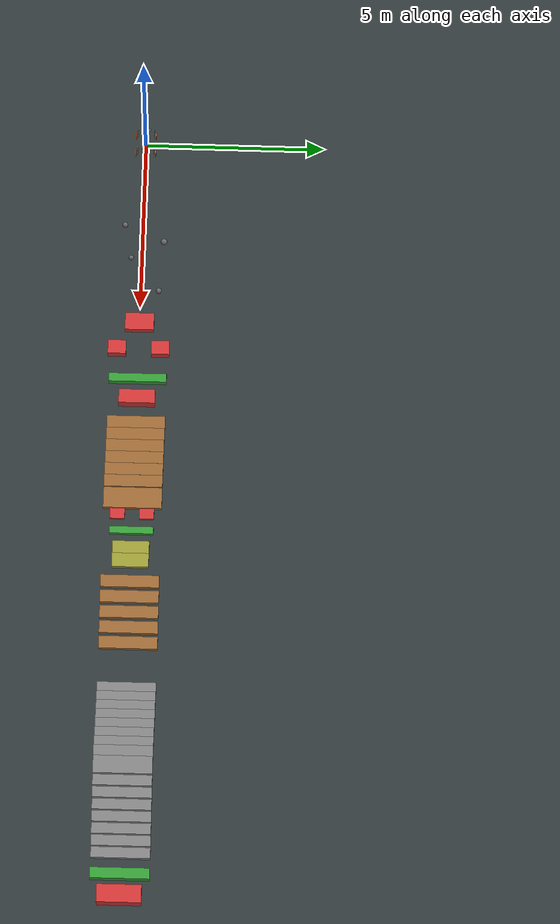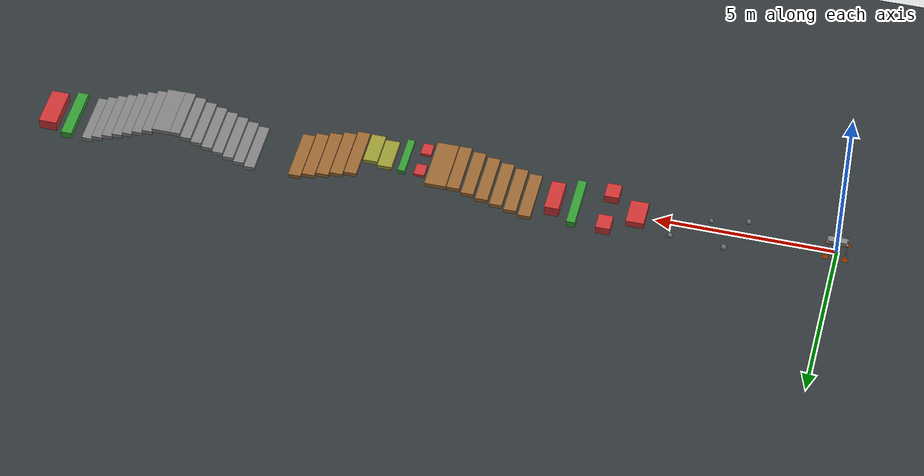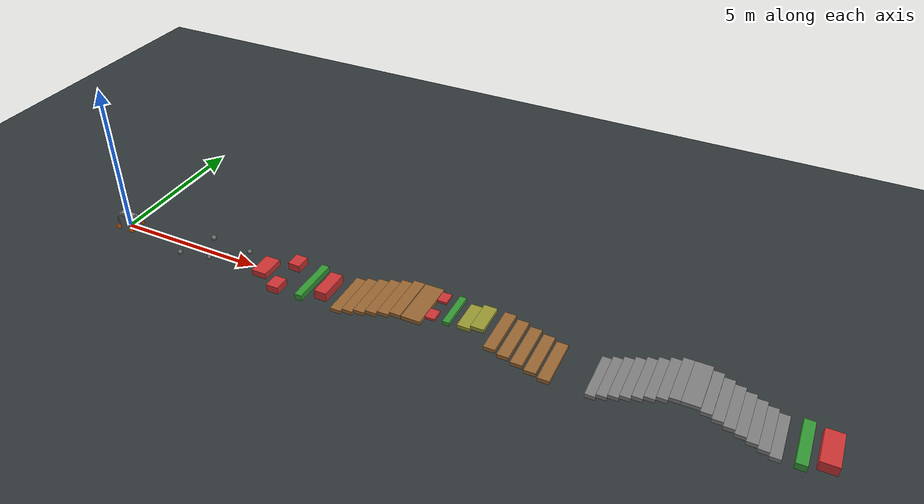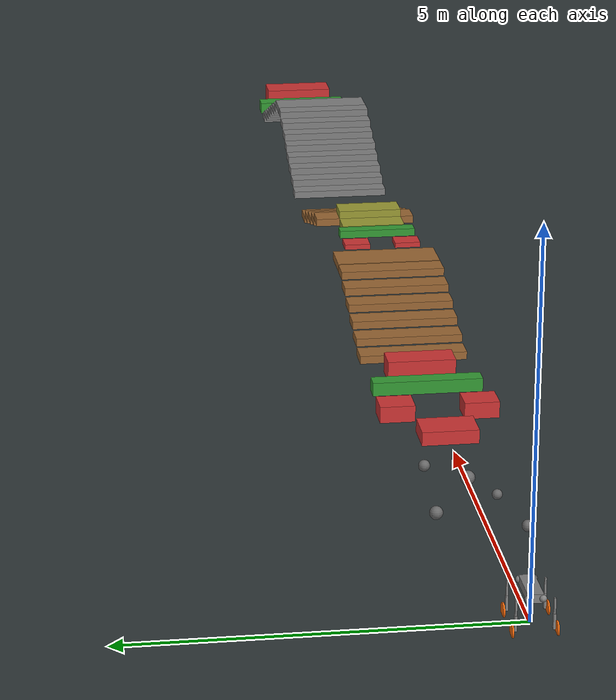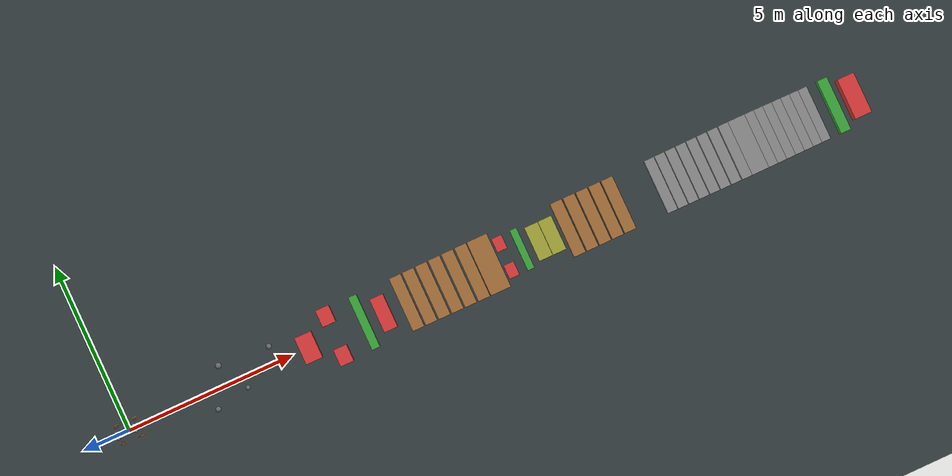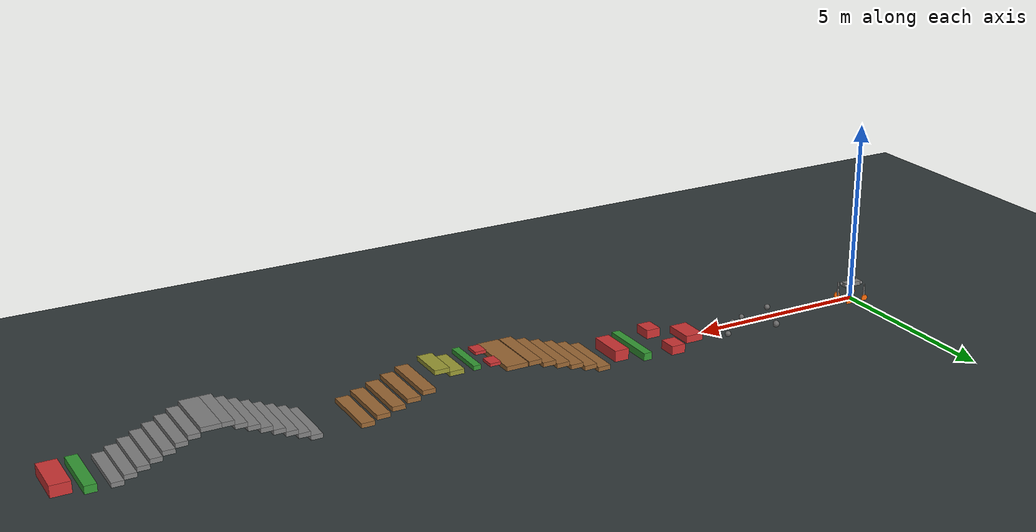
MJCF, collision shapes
<mujoco model="titatit_combined">
  <include file="../wheeled_titatit_rl.xml"/>

  <statistic center="10 0 0.8" extent="14"/>

  <visual>
    <headlight diffuse="0.6 0.6 0.6" ambient="0.35 0.35 0.35" specular="0 0 0"/>
    <rgba haze="0.15 0.25 0.35 1"/>
    <global azimuth="-120" elevation="-20"/>
  </visual>

  <asset>
    <texture type="skybox" builtin="gradient" rgb1="0.35 0.5 0.7" rgb2="0.02 0.03 0.04" width="512" height="3072"/>
    <texture type="2d" name="groundplane" builtin="checker" mark="edge" rgb1="0.25 0.28 0.28" rgb2="0.12 0.15 0.16" markrgb="0.8 0.8 0.8" width="300" height="300"/>
    <material name="groundplane" texture="groundplane" texuniform="true" texrepeat="5 5" reflectance="0.15"/>
    <material name="step_mat" rgba="0.6 0.4 0.2 1"/>
    <material name="slope_mat" rgba="0.5 0.5 0.5 1"/>
    <material name="block_mat" rgba="0.8 0.2 0.2 1"/>
    <material name="barrier_mat" rgba="0.2 0.6 0.2 1"/>
    <material name="rock_mat" rgba="0.4 0.4 0.4 1"/>
    <material name="ramp_mat" rgba="0.6 0.6 0.2 1"/>
  </asset>

  <worldbody>
    <light pos="0 0 2.5" dir="0 0 -1" directional="true"/>
    <geom name="floor" size="0 0 0.05" type="plane" material="groundplane" friction="1.0 0.01 0.01"/>

    <!-- ===== 第1段: 平地起步 (0~2m) ===== -->
    <!-- 机器人从原点出发，2m 加速距离 -->

    <!-- ===== 第2段: 大石块区 (2~5m) ===== -->
    <!-- 较大石块散落分布，测试轮子越障能力 -->
    <geom name="rock_big_01" pos="2.5 -0.5 0.05" type="sphere" size="0.08" material="rock_mat"/>
    <geom name="rock_big_02" pos="3.0 0.6 0.06" type="sphere" size="0.09" material="rock_mat"/>
    <geom name="rock_big_03" pos="3.5 -0.3 0.04" type="sphere" size="0.07" material="rock_mat"/>
    <geom name="rock_big_04" pos="4.0 0.0 0.07" type="sphere" size="0.10" material="rock_mat"/>
    <geom name="rock_big_05" pos="4.5 0.5 0.05" type="sphere" size="0.08" material="rock_mat"/>

    <!-- ===== 第3段: 大方块障碍区 (5~8m) ===== -->
    <!-- 大尺寸方块，需要爬过或绕行 -->
    <geom name="block_large_01" pos="5.5 0.0 0.10" type="box" size="0.25 0.4 0.10" material="block_mat"/>
    <geom name="block_large_02" pos="6.3 -0.6 0.12" type="box" size="0.2 0.25 0.12" material="block_mat"/>
    <geom name="block_large_03" pos="6.3 0.6 0.12" type="box" size="0.2 0.25 0.12" material="block_mat"/>
    <!-- 长条高障碍 -->
    <geom name="barrier_high" pos="7.2 0.0 0.10" type="box" size="0.12 0.8 0.10" material="barrier_mat"/>
    <!-- 大块障碍 -->
    <geom name="block_big" pos="7.8 0.0 0.15" type="box" size="0.2 0.5 0.15" material="block_mat"/>

    <!-- ===== 第4段: 大台阶上坡 (8~11m) ===== -->
    <!-- 每级台阶更高更宽: 高0.12m, 宽0.35m -->
    <geom name="step_big_up_01" pos="8.5 0.0 0.06" type="box" size="0.175 0.8 0.06" material="step_mat"/>
    <geom name="step_big_up_02" pos="8.9 0.0 0.18" type="box" size="0.175 0.8 0.06" material="step_mat"/>
    <geom name="step_big_up_03" pos="9.3 0.0 0.30" type="box" size="0.175 0.8 0.06" material="step_mat"/>
    <geom name="step_big_up_04" pos="9.7 0.0 0.42" type="box" size="0.175 0.8 0.06" material="step_mat"/>
    <geom name="step_big_up_05" pos="10.1 0.0 0.54" type="box" size="0.175 0.8 0.06" material="step_mat"/>
    <geom name="step_big_up_06" pos="10.5 0.0 0.66" type="box" size="0.175 0.8 0.06" material="step_mat"/>

    <!-- ===== 第5段: 高台 + 连续障碍 (10.5~13m) ===== -->
    <geom name="high_platform" pos="11.0 0.0 0.66" type="box" size="0.3 0.8 0.06" material="step_mat"/>
    <!-- 高台上的障碍 -->
    <geom name="plat_block_01" pos="11.5 -0.4 0.76" type="box" size="0.15 0.2 0.04" material="block_mat"/>
    <geom name="plat_block_02" pos="11.5 0.4 0.76" type="box" size="0.15 0.2 0.04" material="block_mat"/>
    <geom name="plat_barrier" pos="12.0 0.0 0.78" type="box" size="0.1 0.6 0.06" material="barrier_mat"/>
    <geom name="plat_ramp_low" pos="12.5 0.0 0.72" type="box" size="0.2 0.5 0.06" material="ramp_mat"/>
    <geom name="plat_ramp_high" pos="12.9 0.0 0.84" type="box" size="0.2 0.5 0.06" material="ramp_mat"/>

    <!-- ===== 第6段: 大台阶下坡 (13~16m) ===== -->
    <geom name="step_big_dn_01" pos="13.4 0.0 0.54" type="box" size="0.175 0.8 0.06" material="step_mat"/>
    <geom name="step_big_dn_02" pos="13.8 0.0 0.42" type="box" size="0.175 0.8 0.06" material="step_mat"/>
    <geom name="step_big_dn_03" pos="14.2 0.0 0.30" type="box" size="0.175 0.8 0.06" material="step_mat"/>
    <geom name="step_big_dn_04" pos="14.6 0.0 0.18" type="box" size="0.175 0.8 0.06" material="step_mat"/>
    <geom name="step_big_dn_05" pos="15.0 0.0 0.06" type="box" size="0.175 0.8 0.06" material="step_mat"/>

    <!-- ===== 第7段: 大斜坡上坡 (16~19m) ===== -->
    <!-- 更陡的斜坡，阶梯近似，坡度约20° -->
    <geom name="slope_steep_up_01" pos="16.3 0.0 0.06" type="box" size="0.15 0.8 0.06" material="slope_mat"/>
    <geom name="slope_steep_up_02" pos="16.6 0.0 0.18" type="box" size="0.15 0.8 0.06" material="slope_mat"/>
    <geom name="slope_steep_up_03" pos="16.9 0.0 0.30" type="box" size="0.15 0.8 0.06" material="slope_mat"/>
    <geom name="slope_steep_up_04" pos="17.2 0.0 0.42" type="box" size="0.15 0.8 0.06" material="slope_mat"/>
    <geom name="slope_steep_up_05" pos="17.5 0.0 0.54" type="box" size="0.15 0.8 0.06" material="slope_mat"/>
    <geom name="slope_steep_up_06" pos="17.8 0.0 0.66" type="box" size="0.15 0.8 0.06" material="slope_mat"/>
    <geom name="slope_steep_up_07" pos="18.1 0.0 0.78" type="box" size="0.15 0.8 0.06" material="slope_mat"/>
    <geom name="slope_steep_up_08" pos="18.4 0.0 0.90" type="box" size="0.15 0.8 0.06" material="slope_mat"/>

    <!-- ===== 第8段: 斜坡顶 + 大斜坡下坡 (18.4~22m) ===== -->
    <geom name="slope_top" pos="18.8 0.0 0.90" type="box" size="0.25 0.8 0.06" material="slope_mat"/>
    <!-- 下坡 -->
    <geom name="slope_steep_dn_01" pos="19.2 0.0 0.78" type="box" size="0.15 0.8 0.06" material="slope_mat"/>
    <geom name="slope_steep_dn_02" pos="19.5 0.0 0.66" type="box" size="0.15 0.8 0.06" material="slope_mat"/>
    <geom name="slope_steep_dn_03" pos="19.8 0.0 0.54" type="box" size="0.15 0.8 0.06" material="slope_mat"/>
    <geom name="slope_steep_dn_04" pos="20.1 0.0 0.42" type="box" size="0.15 0.8 0.06" material="slope_mat"/>
    <geom name="slope_steep_dn_05" pos="20.4 0.0 0.30" type="box" size="0.15 0.8 0.06" material="slope_mat"/>
    <geom name="slope_steep_dn_06" pos="20.7 0.0 0.18" type="box" size="0.15 0.8 0.06" material="slope_mat"/>
    <geom name="slope_steep_dn_07" pos="21.0 0.0 0.06" type="box" size="0.15 0.8 0.06" material="slope_mat"/>

    <!-- ===== 第9段: 终点冲刺 (21~22.5m) ===== -->
    <geom name="finish_barrier" pos="21.6 0.0 0.10" type="box" size="0.15 0.8 0.10" material="barrier_mat"/>
    <geom name="finish_block" pos="22.2 0.0 0.15" type="box" size="0.25 0.6 0.15" material="block_mat"/>
  </worldbody>
</mujoco>

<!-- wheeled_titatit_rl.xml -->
<mujoco model="wheeled_titatit">
  <compiler angle="radian" autolimits="true" meshdir="../meshes_mujoco_decimated"/>
  <option cone="elliptic" impratio="100"/>

  <asset>
    <material name="grey" rgba="0.75294 0.75294 0.75294 1"/>
    <material name="orange" rgba="1.0 0.4235 0.0392 1.0"/>

    <!-- STL mesh 文件 -->
    <mesh name="base" file="base.STL"/>
    <mesh name="FR_hip" file="FR_hip.STL"/>
    <mesh name="FR_thigh" file="FR_thigh.STL"/>
    <mesh name="FR_calf" file="FR_calf.STL"/>
    <mesh name="FR_foot" file="FR_foot.STL"/>
    <mesh name="FL_hip" file="FL_hip.STL"/>
    <mesh name="FL_thigh" file="FL_thigh.STL"/>
    <mesh name="FL_calf" file="FL_calf.STL"/>
    <mesh name="FL_foot" file="FL_foot.STL"/>
    <mesh name="RR_hip" file="RR_hip.STL"/>
    <mesh name="RR_thigh" file="RR_thigh.STL"/>
    <mesh name="RR_calf" file="RR_calf.STL"/>
    <mesh name="RR_foot" file="RR_foot.STL"/>
    <mesh name="RL_hip" file="RL_hip.STL"/>
    <mesh name="RL_thigh" file="RL_thigh.STL"/>
    <mesh name="RL_calf" file="RL_calf.STL"/>
    <mesh name="RL_foot" file="RL_foot.STL"/>
    <mesh name="FL_battery" file="FL_battery.STL"/>
    <mesh name="FR_battery" file="FR_battery.STL"/>
    <mesh name="RL_battery" file="RL_battery.STL"/>
    <mesh name="RR_battery" file="RR_battery.STL"/>
  </asset>

  <worldbody>
    <body name="base" pos="0 0 0.44">
      <inertial pos="0.00610416 -0.00013472 0.03915073" mass="27.81177332" fullinertia="0.33505891 0.51538714 0.39690016 0.00083495 -0.09078959 0.00152686"/>
      <freejoint/>
      <site name="trunk_imu" size="0.01"/>
      <!-- 视觉 mesh (仅渲染, 不参与碰撞) -->
      <geom type="mesh" mesh="base" material="grey" group="1" contype="0" conaffinity="0"/>
      <!-- 碰撞简化体 -->
      <geom size="0.266 0.097 0.057" type="box" contype="1" conaffinity="1" density="0"/>

      <!-- FR leg -->
      <body name="FR_hip" pos="0.26556 -0.0895 0">
        <inertial pos="0.00160252 -5.02529e-05 0.000638012" quat="0.999804 0.00104431 -0.0197557 9.54749e-05" mass="2.06397" diaginertia="0.00430756 0.0029982 0.00226716"/>
        <joint name="FR_hip_joint" axis="1 0 0" range="-0.802851 0.802851" actuatorfrcrange="-55 55"/>
        <!-- 视觉 mesh (仅渲染, 不参与碰撞) -->
        <geom type="mesh" mesh="FR_hip" material="grey" group="1" quat="0.5 0.5 -0.5 -0.5" contype="0" conaffinity="0"/>
        <!-- 碰撞简化体 -->
        <geom size="0.045" type="sphere" contype="1" conaffinity="1" density="0"/>
        <body name="FR_thigh" pos="0 -0.1426 0">
          <inertial pos="0.0198087 -0.000674483 -0.0280301" quat="0.00924299 0.711846 -0.0115591 0.70218" mass="3.08319" diaginertia="0.00882828 0.00650388 0.00294907"/>
          <joint name="FR_thigh_joint" axis="0 1 0" range="-1.0472 4.18879" actuatorfrcrange="-55 55"/>
          <!-- 视觉 mesh (仅渲染, 不参与碰撞) -->
          <geom type="mesh" mesh="FR_thigh" material="grey" group="1" quat="0.5 0.5 0.5 -0.5" contype="0" conaffinity="0"/>
          <!-- 碰撞简化体 -->
          <geom size="0.1 0.01225 0.017" pos="0 0 -0.1" quat="0.707107 0 0.707107 0" type="box" contype="1" conaffinity="1" density="0"/>
          <body name="FR_calf" pos="0 0 -0.2">
            <inertial pos="0.00183801 -0.0116984 -0.0953485" quat="0.997993 -0.0599704 0.0191198 0.00689675" mass="0.572443" diaginertia="0.00342535 0.00324383 0.00025855"/>
            <joint name="FR_calf_joint" axis="0 1 0" range="-2.69653 -0.916298" actuatorfrcrange="-55 55"/>
            <!-- 视觉 mesh (仅渲染, 不参与碰撞) -->
            <geom type="mesh" mesh="FR_calf" material="grey" group="1" quat="0.5 0.5 0.5 -0.5" contype="0" conaffinity="0"/>
            <!-- 碰撞简化体 -->
            <geom size="0.1 0.016 0.024" pos="0 0 -0.1" quat="0.707107 0 0.707107 0" type="box" contype="1" conaffinity="1" density="0"/>
            <body name="FR_foot" pos="0 0 -0.2">
              <inertial pos="0 -0.05 0" quat="0.707107 0 0 0.707107" mass="1.5" diaginertia="0.00674 0.00342 0.00342"/>
              <joint name="FR_foot_joint" axis="0 1 0" range="-1000000 1000000" actuatorfrcrange="-10 10"/>
              <!-- 轮子: cylinder 同时作为视觉和碰撞 (去掉STL mesh避免重叠) -->
              <geom size="0.0948 0.01" pos="0 -0.04 0" quat="0.707105 0.707108 0 0" type="cylinder" material="orange" contype="1" conaffinity="1" density="0"/>
            </body>
          </body>
        </body>
      </body>

      <!-- FL leg -->
      <body name="FL_hip" pos="0.26556 0.0895 0">
        <inertial pos="0.00160252 5.02529e-05 0.000637998" quat="0.999804 -0.00105031 -0.0197557 -9.57276e-05" mass="2.06397" diaginertia="0.00430756 0.0029982 0.00226716"/>
        <joint name="FL_hip_joint" axis="1 0 0" range="-0.802851 0.802851" actuatorfrcrange="-55 55"/>
        <!-- 视觉 mesh (仅渲染, 不参与碰撞) -->
        <geom type="mesh" mesh="FL_hip" material="grey" group="1" quat="0.5 0.5 0.5 0.5" contype="0" conaffinity="0"/>
        <!-- 碰撞简化体 -->
        <geom size="0.045" type="sphere" contype="1" conaffinity="1" density="0"/>
        <body name="FL_thigh" pos="0 0.1426 0">
          <inertial pos="0.0198088 0.000674375 -0.0280301" quat="-0.00924156 0.711846 0.0115573 0.70218" mass="3.08318" diaginertia="0.00882828 0.00650389 0.00294906"/>
          <joint name="FL_thigh_joint" axis="0 1 0" range="-1.0472 4.18879" actuatorfrcrange="-55 55"/>
          <!-- 视觉 mesh (仅渲染, 不参与碰撞) -->
          <geom type="mesh" mesh="FL_thigh" material="grey" group="1" quat="0.5 -0.5 0.5 0.5" contype="0" conaffinity="0"/>
          <!-- 碰撞简化体 -->
          <geom size="0.1 0.01225 0.017" pos="0 0 -0.1" quat="0.707107 0 0.707107 0" type="box" contype="1" conaffinity="1" density="0"/>
          <body name="FL_calf" pos="0 0 -0.2">
            <inertial pos="0.00183801 0.0116984 -0.0953485" quat="0.997993 0.0599704 0.0191198 -0.00689675" mass="0.572443" diaginertia="0.00342535 0.00324383 0.00025855"/>
            <joint name="FL_calf_joint" axis="0 1 0" range="-2.69653 -0.916298" actuatorfrcrange="-55 55"/>
            <!-- 视觉 mesh (仅渲染, 不参与碰撞) -->
            <geom type="mesh" mesh="FL_calf" material="grey" group="1" quat="0.5 -0.5 0.5 0.5" contype="0" conaffinity="0"/>
            <!-- 碰撞简化体 -->
            <geom size="0.1 0.016 0.024" pos="0 0 -0.1" quat="0.707107 0 0.707107 0" type="box" contype="1" conaffinity="1" density="0"/>
            <body name="FL_foot" pos="0 0 -0.2">
              <inertial pos="0 0.05 0" quat="0.707107 0 0 0.707107" mass="1.5" diaginertia="0.00674 0.00342 0.00342"/>
              <joint name="FL_foot_joint" axis="0 1 0" range="-1000000 1000000" actuatorfrcrange="-10 10"/>
              <!-- 轮子: cylinder 同时作为视觉和碰撞 (去掉STL mesh避免重叠) -->
              <geom size="0.0948 0.01" pos="0 0.04 0" quat="0.707105 0.707108 0 0" type="cylinder" material="orange" contype="1" conaffinity="1" density="0"/>
            </body>
          </body>
        </body>
      </body>

      <!-- RR leg -->
      <body name="RR_hip" pos="-0.26519 -0.0895 -0.0002">
        <inertial pos="-0.00160252 -5.02529e-05 0.000638012" quat="0.999804 0.00104431 0.0197557 -9.54749e-05" mass="2.06397" diaginertia="0.00430756 0.0029982 0.00226716"/>
        <joint name="RR_hip_joint" axis="1 0 0" range="-0.802851 0.802851" actuatorfrcrange="-55 55"/>
        <!-- 视觉 mesh (仅渲染, 不参与碰撞) -->
        <geom type="mesh" mesh="RR_hip" material="grey" group="1" quat="0.5 0.5 -0.5 -0.5" contype="0" conaffinity="0"/>
        <!-- 碰撞简化体 -->
        <geom size="0.045" type="sphere" contype="1" conaffinity="1" density="0"/>
        <body name="RR_thigh" pos="0 -0.1426 0">
          <inertial pos="-0.0198087 -0.000674483 -0.0280301" quat="-0.0115591 0.70218 0.00924299 0.711846" mass="3.08319" diaginertia="0.00882828 0.00650388 0.00294907"/>
          <joint name="RR_thigh_joint" axis="0 1 0" range="-4.18879 1.0472" actuatorfrcrange="-55 55"/>
          <!-- 视觉 mesh (仅渲染, 不参与碰撞) -->
          <geom type="mesh" mesh="RR_thigh" material="grey" group="1" quat="0.5 0.5 0.5 -0.5" contype="0" conaffinity="0"/>
          <!-- 碰撞简化体 -->
          <geom size="0.1 0.01225 0.017" pos="0 0 -0.1" quat="0.707107 0 0.707107 0" type="box" contype="1" conaffinity="1" density="0"/>
          <body name="RR_calf" pos="0 0 -0.2">
            <inertial pos="-0.00183801 -0.0116984 -0.0953485" quat="0.997993 -0.0599704 -0.0191198 -0.00689675" mass="0.572443" diaginertia="0.00342535 0.00324383 0.00025855"/>
            <joint name="RR_calf_joint" axis="0 1 0" range="-0.916298 2.69653" actuatorfrcrange="-55 55"/>
            <!-- 视觉 mesh (仅渲染, 不参与碰撞) -->
            <geom type="mesh" mesh="RR_calf" material="grey" group="1" quat="0.5 0.5 0.5 -0.5" contype="0" conaffinity="0"/>
            <!-- 碰撞简化体 -->
            <geom size="0.1 0.016 0.024" pos="0 0 -0.1" quat="0.707107 0 0.707107 0" type="box" contype="1" conaffinity="1" density="0"/>
            <body name="RR_foot" pos="0 0 -0.2">
              <inertial pos="0 -0.05 0" quat="0.707107 0 0 0.707107" mass="1.5" diaginertia="0.00674 0.00342 0.00342"/>
              <joint name="RR_foot_joint" axis="0 1 0" range="-1000000 1000000" actuatorfrcrange="-10 10"/>
              <!-- 轮子: cylinder 同时作为视觉和碰撞 (去掉STL mesh避免重叠) -->
              <geom size="0.0948 0.01" pos="0 -0.04 0" quat="0.707105 0.707108 0 0" type="cylinder" material="orange" contype="1" conaffinity="1" density="0"/>
            </body>
          </body>
        </body>
      </body>

      <!-- RL leg -->
      <body name="RL_hip" pos="-0.26556 0.0895 0">
        <inertial pos="-0.00160252 5.02529e-05 0.000637998" quat="0.999804 -0.00105031 0.0197557 9.57276e-05" mass="2.06397" diaginertia="0.00430756 0.0029982 0.00226716"/>
        <joint name="RL_hip_joint" axis="1 0 0" range="-0.802851 0.802851" actuatorfrcrange="-55 55"/>
        <!-- 视觉 mesh (仅渲染, 不参与碰撞) -->
        <geom type="mesh" mesh="RL_hip" material="grey" group="1" quat="0.5 0.5 0.5 0.5" contype="0" conaffinity="0"/>
        <!-- 碰撞简化体 -->
        <geom size="0.045" type="sphere" contype="1" conaffinity="1" density="0"/>
        <body name="RL_thigh" pos="0 0.1426 0">
          <inertial pos="-0.0198088 0.000674375 -0.0280301" quat="0.0115573 0.70218 -0.00924156 0.711846" mass="3.08318" diaginertia="0.00882828 0.00650389 0.00294906"/>
          <joint name="RL_thigh_joint" axis="0 1 0" range="-4.18879 1.0472" actuatorfrcrange="-55 55"/>
          <!-- 视觉 mesh (仅渲染, 不参与碰撞) -->
          <geom type="mesh" mesh="RL_thigh" material="grey" group="1" quat="0.5 -0.5 0.5 0.5" contype="0" conaffinity="0"/>
          <!-- 碰撞简化体 -->
          <geom size="0.1 0.01225 0.017" pos="0 0 -0.1" quat="0.707107 0 0.707107 0" type="box" contype="1" conaffinity="1" density="0"/>
          <body name="RL_calf" pos="0 0 -0.2">
            <inertial pos="-0.00183801 0.0116984 -0.0953485" quat="0.997993 0.0599704 -0.0191198 0.00689675" mass="0.572443" diaginertia="0.00342535 0.00324383 0.00025855"/>
            <joint name="RL_calf_joint" axis="0 1 0" range="0.916298 2.69653" actuatorfrcrange="-55 55"/>
            <!-- 视觉 mesh (仅渲染, 不参与碰撞) -->
            <geom type="mesh" mesh="RL_calf" material="grey" group="1" quat="0.5 -0.5 0.5 0.5" contype="0" conaffinity="0"/>
            <!-- 碰撞简化体 -->
            <geom size="0.1 0.016 0.024" pos="0 0 -0.1" quat="0.707107 0 0.707107 0" type="box" contype="1" conaffinity="1" density="0"/>
            <body name="RL_foot" pos="0 0 -0.2">
              <inertial pos="0 0.05 0" quat="0.707107 0 0 0.707107" mass="1.5" diaginertia="0.00674 0.00342 0.00342"/>
              <joint name="RL_foot_joint" axis="0 1 0" range="-1000000 1000000" actuatorfrcrange="-10 10"/>
              <!-- 轮子: cylinder 同时作为视觉和碰撞 (去掉STL mesh避免重叠) -->
              <geom size="0.0948 0.01" pos="0 0.04 0" quat="0.707105 0.707108 0 0" type="cylinder" material="orange" contype="1" conaffinity="1" density="0"/>
            </body>
          </body>
        </body>
      </body>
    </body>
  </worldbody>

  <actuator>
    <motor name="FR_hip" joint="FR_hip_joint" ctrllimited="true" ctrlrange="-55 55"/>
    <motor name="FR_thigh" joint="FR_thigh_joint" ctrllimited="true" ctrlrange="-55 55"/>
    <motor name="FR_calf" joint="FR_calf_joint" ctrllimited="true" ctrlrange="-55 55"/>
    <motor name="FR_foot" joint="FR_foot_joint" ctrllimited="true" ctrlrange="-10 10"/>
    <motor name="FL_hip" joint="FL_hip_joint" ctrllimited="true" ctrlrange="-55 55"/>
    <motor name="FL_thigh" joint="FL_thigh_joint" ctrllimited="true" ctrlrange="-55 55"/>
    <motor name="FL_calf" joint="FL_calf_joint" ctrllimited="true" ctrlrange="-55 55"/>
    <motor name="FL_foot" joint="FL_foot_joint" ctrllimited="true" ctrlrange="-10 10"/>
    <motor name="RR_hip" joint="RR_hip_joint" ctrllimited="true" ctrlrange="-55 55"/>
    <motor name="RR_thigh" joint="RR_thigh_joint" ctrllimited="true" ctrlrange="-55 55"/>
    <motor name="RR_calf" joint="RR_calf_joint" ctrllimited="true" ctrlrange="-55 55"/>
    <motor name="RR_foot" joint="RR_foot_joint" ctrllimited="true" ctrlrange="-10 10"/>
    <motor name="RL_hip" joint="RL_hip_joint" ctrllimited="true" ctrlrange="-55 55"/>
    <motor name="RL_thigh" joint="RL_thigh_joint" ctrllimited="true" ctrlrange="-55 55"/>
    <motor name="RL_calf" joint="RL_calf_joint" ctrllimited="true" ctrlrange="-55 55"/>
    <motor name="RL_foot" joint="RL_foot_joint" ctrllimited="true" ctrlrange="-10 10"/>
  </actuator>

  <sensor>
    <framequat name="trunk_quat" objtype="site" objname="trunk_imu"/>
    <gyro name="trunk_gyro" site="trunk_imu"/>
    <accelerometer name="trunk_accel" site="trunk_imu"/>
    <framepos name="frame_pos" objtype="site" objname="trunk_imu"/>
    <framelinvel name="frame_vel" objtype="site" objname="trunk_imu"/>
  </sensor>
</mujoco>
